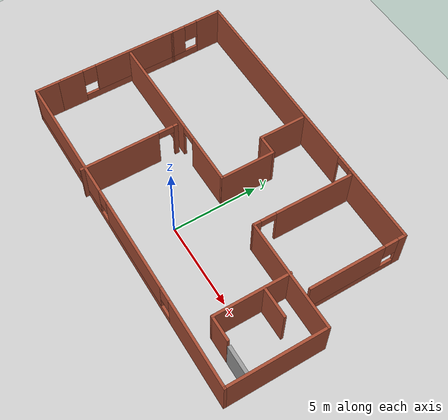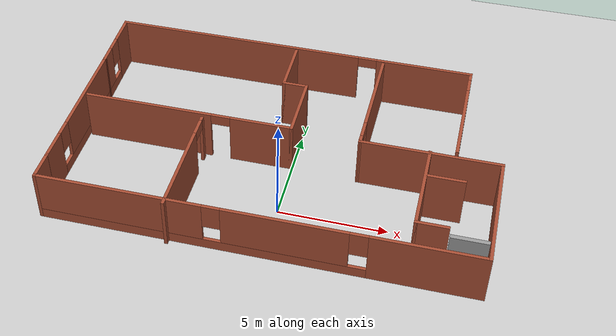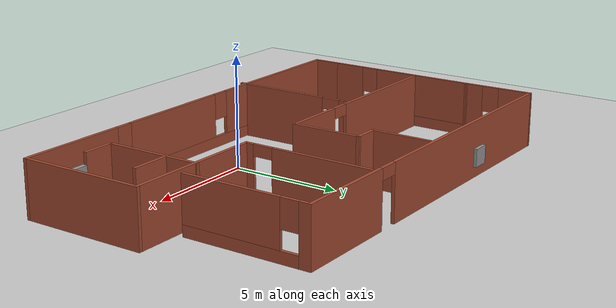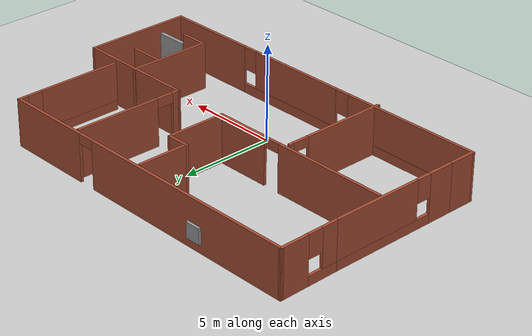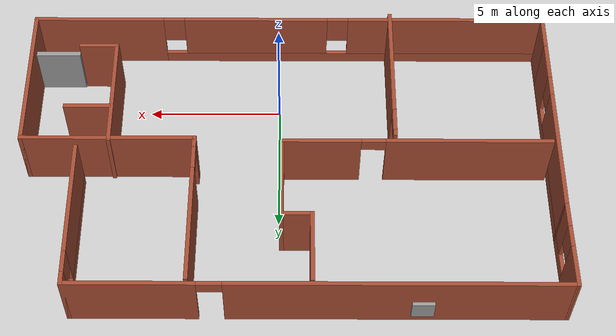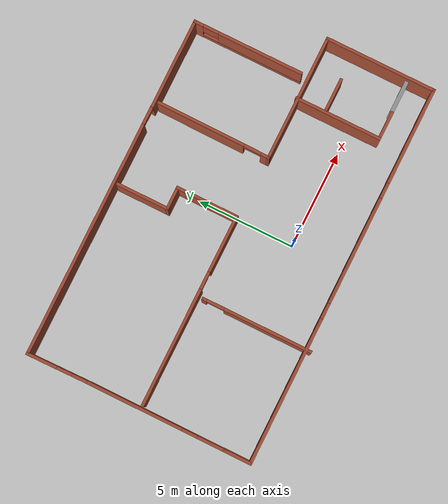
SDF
<sdf version="1.6">
 <world name="default">
  <light name="sun" type="directional">
   <pose>0 0 10 0 -0 0</pose>
   <diffuse>0.8 0.8 0.8 1</diffuse>
   <specular>0.2 0.2 0.2 1</specular>
   <attenuation>
    <range>1000</range>
    <constant>0.9</constant>
    <linear>0.01</linear>
    <quadratic>0.001</quadratic>
   </attenuation>
   <direction>-0.5 0.1 -0.9</direction>
  </light>
  <model name="ground_plane">
   <static>1</static>
   <link name="link">
    <collision name="collision">
     <geometry><plane><normal>0 0 1</normal><size>100 100</size></plane></geometry>
     <surface><friction><ode><mu>100</mu><mu2>50</mu2></ode></friction></surface>
    </collision>
    <visual name="visual">
     <cast_shadows>0</cast_shadows>
     <geometry><plane><normal>0 0 1</normal><size>100 100</size></plane></geometry>
     <material>
      <script><uri>file://media/materials/scripts/gazebo.material</uri><name>Gazebo/Grey</name></script>
     </material>
    </visual>
   </link>
  </model>
  <gravity>0 0 -9.8</gravity>
  <magnetic_field>6e-06 2.3e-05 -4.2e-05</magnetic_field>
  <atmosphere type="adiabatic"/>
  <physics name="default_physics" default="0" type="ode">
   <max_step_size>0.001</max_step_size>
   <real_time_factor>1</real_time_factor>
   <real_time_update_rate>1000</real_time_update_rate>
  </physics>
  <scene><ambient>0.4 0.4 0.4 1</ambient><background>0.7 0.7 0.7 1</background><shadows>1</shadows></scene>
  <spherical_coordinates>
   <surface_model>EARTH_WGS84</surface_model>
   <latitude_deg>0</latitude_deg>
   <longitude_deg>0</longitude_deg>
   <elevation>0</elevation>
   <heading_deg>0</heading_deg>
  </spherical_coordinates>
  <model name="MY_HOUSE">
   <pose>-0.392203 2.94254 0 0 -0 0</pose>
   <link name="Door_5">
    <collision name="Door_5_Collision">
     <geometry><box><size>1.82522 0.2 2</size></box></geometry>
     <pose>0 0 1 0 -0 0</pose>
    </collision>
    <visual name="Door_5_Visual">
     <pose>0 0 1 0 -0 0</pose>
     <geometry><box><size>1.82522 0.2 2</size></box></geometry>
     <material>
      <script><uri>file://media/materials/scripts/gazebo.material</uri><name>Gazebo/Grey</name></script>
     </material>
    </visual>
    <pose>8.98514 -4.37341 0 0 -0 0</pose>
   </link>
   <link name="Wall_0">
    <pose>-1.02446 5.91163 0 0 -0 0</pose>
    <visual name="Wall_0_Visual_0">
     <pose>-2.78462 0 1.25 0 -0 0</pose>
     <geometry><box><size>12.1808 0.15 2.5</size></box></geometry>
     <material>
      <script><uri>file://media/materials/scripts/gazebo.material</uri><name>Gazebo/Bricks</name></script>
      <ambient>1 1 1 1</ambient>
     </material>
     <meta><layer>0</layer></meta>
    </visual>
    <collision name="Wall_0_Collision_0">
     <geometry><box><size>12.1808 0.15 2.5</size></box></geometry>
     <pose>-2.78462 0 1.25 0 -0 0</pose>
    </collision>
    <visual name="Wall_0_Visual_1">
     <pose>6.54038 0 1.25 0 -0 0</pose>
     <geometry><box><size>4.66923 0.15 2.5</size></box></geometry>
     <material>
      <script><uri>file://media/materials/scripts/gazebo.material</uri><name>Gazebo/Bricks</name></script>
      <ambient>1 1 1 1</ambient>
     </material>
     <meta><layer>0</layer></meta>
    </visual>
    <collision name="Wall_0_Collision_1">
     <geometry><box><size>4.66923 0.15 2.5</size></box></geometry>
     <pose>6.54038 0 1.25 0 -0 0</pose>
    </collision>
    <visual name="Wall_0_Visual_2">
     <pose>3.75577 0 2.25 0 -0 0</pose>
     <geometry><box><size>0.9 0.15 0.5</size></box></geometry>
     <material>
      <script><uri>file://media/materials/scripts/gazebo.material</uri><name>Gazebo/Bricks</name></script>
      <ambient>1 1 1 1</ambient>
     </material>
     <meta><layer>0</layer></meta>
    </visual>
    <collision name="Wall_0_Collision_2">
     <geometry><box><size>0.9 0.15 0.5</size></box></geometry>
     <pose>3.75577 0 2.25 0 -0 0</pose>
    </collision>
   </link>
   <link name="Wall_1">
    <pose>7.77554 3.11163 0 0 0 -1.5708</pose>
    <visual name="Wall_1_Visual_0">
     <pose>-2.61362 0 1.25 0 -0 0</pose>
     <geometry><box><size>0.522757 0.15 2.5</size></box></geometry>
     <material>
      <script><uri>file://media/materials/scripts/gazebo.material</uri><name>Gazebo/Bricks</name></script>
      <ambient>1 1 1 1</ambient>
     </material>
     <meta><layer>0</layer></meta>
    </visual>
    <collision name="Wall_1_Collision_0">
     <geometry><box><size>0.522757 0.15 2.5</size></box></geometry>
     <pose>-2.61362 0 1.25 0 -0 0</pose>
    </collision>
    <visual name="Wall_1_Visual_1">
     <pose>0.261379 0 0.25 0 -0 0</pose>
     <geometry><box><size>5.22724 0.15 0.5</size></box></geometry>
     <material>
      <script><uri>file://media/materials/scripts/gazebo.material</uri><name>Gazebo/Bricks</name></script>
      <ambient>1 1 1 1</ambient>
     </material>
     <meta><layer>0</layer></meta>
    </visual>
    <collision name="Wall_1_Collision_1">
     <geometry><box><size>5.22724 0.15 0.5</size></box></geometry>
     <pose>0.261379 0 0.25 0 -0 0</pose>
    </collision>
    <visual name="Wall_1_Visual_2">
     <pose>0.661379 0 1.5 0 -0 0</pose>
     <geometry><box><size>4.42724 0.15 2</size></box></geometry>
     <material>
      <script><uri>file://media/materials/scripts/gazebo.material</uri><name>Gazebo/Bricks</name></script>
      <ambient>1 1 1 1</ambient>
     </material>
     <meta><layer>0</layer></meta>
    </visual>
    <collision name="Wall_1_Collision_2">
     <geometry><box><size>4.42724 0.15 2</size></box></geometry>
     <pose>0.661379 0 1.5 0 -0 0</pose>
    </collision>
    <visual name="Wall_1_Visual_3">
     <pose>-1.95224 0 1.9 0 -0 0</pose>
     <geometry><box><size>0.8 0.15 1.2</size></box></geometry>
     <material>
      <script><uri>file://media/materials/scripts/gazebo.material</uri><name>Gazebo/Bricks</name></script>
      <ambient>1 1 1 1</ambient>
     </material>
     <meta><layer>0</layer></meta>
    </visual>
    <collision name="Wall_1_Collision_3">
     <geometry><box><size>0.8 0.15 1.2</size></box></geometry>
     <pose>-1.95224 0 1.9 0 -0 0</pose>
    </collision>
   </link>
   <link name="Wall_10">
    <collision name="Wall_10_Collision">
     <geometry><box><size>3.25 0.15 2.5</size></box></geometry>
     <pose>0 0 1.25 0 -0 0</pose>
    </collision>
    <visual name="Wall_10_Visual">
     <pose>0 0 1.25 0 -0 0</pose>
     <geometry><box><size>3.25 0.15 2.5</size></box></geometry>
     <material>
      <script><uri>file://media/materials/scripts/gazebo.material</uri><name>Gazebo/Bricks</name></script>
      <ambient>1 1 1 1</ambient>
     </material>
     <meta><layer>0</layer></meta>
    </visual>
    <pose>0.291541 1.55639 0 0 -0 1.5708</pose>
   </link>
   <link name="Wall_11">
    <collision name="Wall_11_Collision">
     <geometry><box><size>1.25 0.15 2.5</size></box></geometry>
     <pose>0 0 1.25 0 -0 0</pose>
    </collision>
    <visual name="Wall_11_Visual">
     <pose>0 0 1.25 0 -0 0</pose>
     <geometry><box><size>1.25 0.15 2.5</size></box></geometry>
     <material>
      <script><uri>file://media/materials/scripts/gazebo.material</uri><name>Gazebo/Bricks</name></script>
      <ambient>1 1 1 1</ambient>
     </material>
     <meta><layer>0</layer></meta>
    </visual>
    <pose>-0.258459 3.10639 0 0 -0 3.14159</pose>
   </link>
   <link name="Wall_12">
    <collision name="Wall_12_Collision">
     <geometry><box><size>2.75 0.15 2.5</size></box></geometry>
     <pose>0 0 1.25 0 -0 0</pose>
    </collision>
    <visual name="Wall_12_Visual">
     <pose>0 0 1.25 0 -0 0</pose>
     <geometry><box><size>2.75 0.15 2.5</size></box></geometry>
     <material>
      <script><uri>file://media/materials/scripts/gazebo.material</uri><name>Gazebo/Bricks</name></script>
      <ambient>1 1 1 1</ambient>
     </material>
     <meta><layer>0</layer></meta>
    </visual>
    <pose>-0.808459 4.40639 0 0 -0 1.5708</pose>
   </link>
   <link name="Wall_14">
    <pose>3.50224 2.79941 0 0 0 -1.57997</pose>
    <visual name="Wall_14_Visual_0">
     <pose>-0.683638 0 1.25 0 -0 0</pose>
     <geometry><box><size>4.58181 0.15 2.5</size></box></geometry>
     <material>
      <script><uri>file://media/materials/scripts/gazebo.material</uri><name>Gazebo/Bricks</name></script>
      <ambient>1 1 1 1</ambient>
     </material>
     <meta><layer>0</layer></meta>
    </visual>
    <collision name="Wall_14_Collision_0">
     <geometry><box><size>4.58181 0.15 2.5</size></box></geometry>
     <pose>-0.683638 0 1.25 0 -0 0</pose>
    </collision>
    <visual name="Wall_14_Visual_1">
     <pose>2.74091 0 1.25 0 -0 0</pose>
     <geometry><box><size>0.467275 0.15 2.5</size></box></geometry>
     <material>
      <script><uri>file://media/materials/scripts/gazebo.material</uri><name>Gazebo/Bricks</name></script>
      <ambient>1 1 1 1</ambient>
     </material>
     <meta><layer>0</layer></meta>
    </visual>
    <collision name="Wall_14_Collision_1">
     <geometry><box><size>0.467275 0.15 2.5</size></box></geometry>
     <pose>2.74091 0 1.25 0 -0 0</pose>
    </collision>
    <visual name="Wall_14_Visual_2">
     <pose>2.05727 0 2.25 0 -0 0</pose>
     <geometry><box><size>0.9 0.15 0.5</size></box></geometry>
     <material>
      <script><uri>file://media/materials/scripts/gazebo.material</uri><name>Gazebo/Bricks</name></script>
      <ambient>1 1 1 1</ambient>
     </material>
     <meta><layer>0</layer></meta>
    </visual>
    <collision name="Wall_14_Collision_2">
     <geometry><box><size>0.9 0.15 0.5</size></box></geometry>
     <pose>2.05727 0 2.25 0 -0 0</pose>
    </collision>
   </link>
   <link name="Wall_16">
    <collision name="Wall_16_Collision">
     <geometry><box><size>4.5 0.15 2.5</size></box></geometry>
     <pose>0 0 1.25 0 -0 0</pose>
    </collision>
    <visual name="Wall_16_Visual">
     <pose>0 0 1.25 0 -0 0</pose>
     <geometry><box><size>4.5 0.15 2.5</size></box></geometry>
     <material>
      <script><uri>file://media/materials/scripts/gazebo.material</uri><name>Gazebo/Bricks</name></script>
      <ambient>1 1 1 1</ambient>
     </material>
     <meta><layer>0</layer></meta>
    </visual>
    <pose>6.61446 -2.22181 0 0 0 -1.5708</pose>
   </link>
   <link name="Wall_17">
    <collision name="Wall_17_Collision">
     <geometry><box><size>1.5 0.15 2.5</size></box></geometry>
     <pose>0 0 1.25 0 -0 0</pose>
    </collision>
    <visual name="Wall_17_Visual">
     <pose>0 0 1.25 0 -0 0</pose>
     <geometry><box><size>1.5 0.15 2.5</size></box></geometry>
     <material>
      <script><uri>file://media/materials/scripts/gazebo.material</uri><name>Gazebo/Bricks</name></script>
      <ambient>1 1 1 1</ambient>
     </material>
     <meta><layer>0</layer></meta>
    </visual>
    <pose>7.28946 -4.39681 0 0 -0 0</pose>
   </link>
   <link name="Wall_19">
    <collision name="Wall_19_Collision">
     <geometry><box><size>1.75 0.15 2.5</size></box></geometry>
     <pose>0 0 1.25 0 -0 0</pose>
    </collision>
    <visual name="Wall_19_Visual">
     <pose>0 0 1.25 0 -0 0</pose>
     <geometry><box><size>1.75 0.15 2.5</size></box></geometry>
     <material>
      <script><uri>file://media/materials/scripts/gazebo.material</uri><name>Gazebo/Bricks</name></script>
      <ambient>1 1 1 1</ambient>
     </material>
     <meta><layer>0</layer></meta>
    </visual>
    <pose>7.52086 -1.53642 0 0 -0 0</pose>
   </link>
   <link name="Wall_21">
    <pose>-3.86602 -3.11281 0 0 0 -1.5708</pose>
    <visual name="Wall_21_Visual_0">
     <pose>-2.74556 0 1.25 0 -0 0</pose>
     <geometry><box><size>0.258873 0.15 2.5</size></box></geometry>
     <material>
      <script><uri>file://media/materials/scripts/gazebo.material</uri><name>Gazebo/Bricks</name></script>
      <ambient>1 1 1 1</ambient>
     </material>
     <meta><layer>0</layer></meta>
    </visual>
    <collision name="Wall_21_Collision_0">
     <geometry><box><size>0.258873 0.15 2.5</size></box></geometry>
     <pose>-2.74556 0 1.25 0 -0 0</pose>
    </collision>
    <visual name="Wall_21_Visual_1">
     <pose>0.579437 0 1.25 0 -0 0</pose>
     <geometry><box><size>4.59113 0.15 2.5</size></box></geometry>
     <material>
      <script><uri>file://media/materials/scripts/gazebo.material</uri><name>Gazebo/Bricks</name></script>
      <ambient>1 1 1 1</ambient>
     </material>
     <meta><layer>0</layer></meta>
    </visual>
    <collision name="Wall_21_Collision_1">
     <geometry><box><size>4.59113 0.15 2.5</size></box></geometry>
     <pose>0.579437 0 1.25 0 -0 0</pose>
    </collision>
    <visual name="Wall_21_Visual_2">
     <pose>-2.16613 0 2.25 0 -0 0</pose>
     <geometry><box><size>0.9 0.15 0.5</size></box></geometry>
     <material>
      <script><uri>file://media/materials/scripts/gazebo.material</uri><name>Gazebo/Bricks</name></script>
      <ambient>1 1 1 1</ambient>
     </material>
     <meta><layer>0</layer></meta>
    </visual>
    <collision name="Wall_21_Collision_2">
     <geometry><box><size>0.9 0.15 0.5</size></box></geometry>
     <pose>-2.16613 0 2.25 0 -0 0</pose>
    </collision>
   </link>
   <link name="Wall_25">
    <pose>-9.79941 4.33081 0 0 0 -1.55495</pose>
    <visual name="Wall_25_Visual_0">
     <pose>-0.864495 0 1.25 0 -0 0</pose>
     <geometry><box><size>1.58305 0.15 2.5</size></box></geometry>
     <material>
      <script><uri>file://media/materials/scripts/gazebo.material</uri><name>Gazebo/Bricks</name></script>
      <ambient>1 1 1 1</ambient>
     </material>
     <meta><layer>0</layer></meta>
    </visual>
    <collision name="Wall_25_Collision_0">
     <geometry><box><size>1.58305 0.15 2.5</size></box></geometry>
     <pose>-0.864495 0 1.25 0 -0 0</pose>
    </collision>
    <visual name="Wall_25_Visual_1">
     <pose>0.791526 0 0.25 0 -0 0</pose>
     <geometry><box><size>1.72899 0.15 0.5</size></box></geometry>
     <material>
      <script><uri>file://media/materials/scripts/gazebo.material</uri><name>Gazebo/Bricks</name></script>
      <ambient>1 1 1 1</ambient>
     </material>
     <meta><layer>0</layer></meta>
    </visual>
    <collision name="Wall_25_Collision_1">
     <geometry><box><size>1.72899 0.15 0.5</size></box></geometry>
     <pose>0.791526 0 0.25 0 -0 0</pose>
    </collision>
    <visual name="Wall_25_Visual_2">
     <pose>1.19153 0 1.5 0 -0 0</pose>
     <geometry><box><size>0.92899 0.15 2</size></box></geometry>
     <material>
      <script><uri>file://media/materials/scripts/gazebo.material</uri><name>Gazebo/Bricks</name></script>
      <ambient>1 1 1 1</ambient>
     </material>
     <meta><layer>0</layer></meta>
    </visual>
    <collision name="Wall_25_Collision_2">
     <geometry><box><size>0.92899 0.15 2</size></box></geometry>
     <pose>1.19153 0 1.5 0 -0 0</pose>
    </collision>
    <visual name="Wall_25_Visual_3">
     <pose>0.327031 0 1.9 0 -0 0</pose>
     <geometry><box><size>0.8 0.15 1.2</size></box></geometry>
     <material>
      <script><uri>file://media/materials/scripts/gazebo.material</uri><name>Gazebo/Bricks</name></script>
      <ambient>1 1 1 1</ambient>
     </material>
     <meta><layer>0</layer></meta>
    </visual>
    <collision name="Wall_25_Collision_3">
     <geometry><box><size>0.8 0.15 1.2</size></box></geometry>
     <pose>0.327031 0 1.9 0 -0 0</pose>
    </collision>
   </link>
   <link name="Wall_3">
    <collision name="Wall_3_Collision">
     <geometry><box><size>6.5 0.15 2.5</size></box></geometry>
     <pose>0 0 1.25 0 -0 0</pose>
    </collision>
    <visual name="Wall_3_Visual">
     <pose>0 0 1.25 0 -0 0</pose>
     <geometry><box><size>6.5 0.15 2.5</size></box></geometry>
     <material>
      <script><uri>file://media/materials/scripts/gazebo.material</uri><name>Gazebo/Bricks</name></script>
      <ambient>1 1 1 1</ambient>
     </material>
     <meta><layer>0</layer></meta>
    </visual>
    <pose>6.65064 -0.100011 0 0 -0 0</pose>
   </link>
   <link name="Wall_4">
    <collision name="Wall_4_Collision">
     <geometry><box><size>5.75 0.15 2.5</size></box></geometry>
     <pose>0 0 1.25 0 -0 0</pose>
    </collision>
    <visual name="Wall_4_Visual">
     <pose>0 0 1.25 0 -0 0</pose>
     <geometry><box><size>5.75 0.15 2.5</size></box></geometry>
     <material>
      <script><uri>file://media/materials/scripts/gazebo.material</uri><name>Gazebo/Bricks</name></script>
      <ambient>1 1 1 1</ambient>
     </material>
     <meta><layer>0</layer></meta>
    </visual>
    <pose>9.82564 -2.90001 0 0 0 -1.5708</pose>
   </link>
   <link name="Wall_5">
    <pose>0.025638 -5.70001 0 0 -0 3.14159</pose>
    <visual name="Wall_5_Visual_0">
     <pose>-7.37358 0 1.25 0 -0 0</pose>
     <geometry><box><size>5.00284 0.15 2.5</size></box></geometry>
     <material>
      <script><uri>file://media/materials/scripts/gazebo.material</uri><name>Gazebo/Bricks</name></script>
      <ambient>1 1 1 1</ambient>
     </material>
     <meta><layer>0</layer></meta>
    </visual>
    <collision name="Wall_5_Collision_0">
     <geometry><box><size>5.00284 0.15 2.5</size></box></geometry>
     <pose>-7.37358 0 1.25 0 -0 0</pose>
    </collision>
    <visual name="Wall_5_Visual_1">
     <pose>2.50142 0 0.25 0 -0 0</pose>
     <geometry><box><size>14.7472 0.15 0.5</size></box></geometry>
     <material>
      <script><uri>file://media/materials/scripts/gazebo.material</uri><name>Gazebo/Bricks</name></script>
      <ambient>1 1 1 1</ambient>
     </material>
     <meta><layer>0</layer></meta>
    </visual>
    <collision name="Wall_5_Collision_1">
     <geometry><box><size>14.7472 0.15 0.5</size></box></geometry>
     <pose>2.50142 0 0.25 0 -0 0</pose>
    </collision>
    <visual name="Wall_5_Visual_2">
     <pose>-1.30327 0 1.5 0 -0 0</pose>
     <geometry><box><size>5.53779 0.15 2</size></box></geometry>
     <material>
      <script><uri>file://media/materials/scripts/gazebo.material</uri><name>Gazebo/Bricks</name></script>
      <ambient>1 1 1 1</ambient>
     </material>
     <meta><layer>0</layer></meta>
    </visual>
    <collision name="Wall_5_Collision_2">
     <geometry><box><size>5.53779 0.15 2</size></box></geometry>
     <pose>-1.30327 0 1.5 0 -0 0</pose>
    </collision>
    <visual name="Wall_5_Visual_3">
     <pose>6.07031 0 1.5 0 -0 0</pose>
     <geometry><box><size>7.60938 0.15 2</size></box></geometry>
     <material>
      <script><uri>file://media/materials/scripts/gazebo.material</uri><name>Gazebo/Bricks</name></script>
      <ambient>1 1 1 1</ambient>
     </material>
     <meta><layer>0</layer></meta>
    </visual>
    <collision name="Wall_5_Collision_3">
     <geometry><box><size>7.60938 0.15 2</size></box></geometry>
     <pose>6.07031 0 1.5 0 -0 0</pose>
    </collision>
    <visual name="Wall_5_Visual_4">
     <pose>-4.47216 0 1.9 0 -0 0</pose>
     <geometry><box><size>0.8 0.15 1.2</size></box></geometry>
     <material>
      <script><uri>file://media/materials/scripts/gazebo.material</uri><name>Gazebo/Bricks</name></script>
      <ambient>1 1 1 1</ambient>
     </material>
     <meta><layer>0</layer></meta>
    </visual>
    <collision name="Wall_5_Collision_4">
     <geometry><box><size>0.8 0.15 1.2</size></box></geometry>
     <pose>-4.47216 0 1.9 0 -0 0</pose>
    </collision>
    <visual name="Wall_5_Visual_5">
     <pose>1.86562 0 1.9 0 -0 0</pose>
     <geometry><box><size>0.8 0.15 1.2</size></box></geometry>
     <material>
      <script><uri>file://media/materials/scripts/gazebo.material</uri><name>Gazebo/Bricks</name></script>
      <ambient>1 1 1 1</ambient>
     </material>
     <meta><layer>0</layer></meta>
    </visual>
    <collision name="Wall_5_Collision_5">
     <geometry><box><size>0.8 0.15 1.2</size></box></geometry>
     <pose>1.86562 0 1.9 0 -0 0</pose>
    </collision>
   </link>
   <link name="Wall_6">
    <collision name="Wall_6_Collision">
     <geometry><box><size>1.5 0.15 2.5</size></box></geometry>
     <pose>0 0 1.25 0 -0 0</pose>
    </collision>
    <visual name="Wall_6_Visual">
     <pose>0 0 1.25 0 -0 0</pose>
     <geometry><box><size>1.5 0.15 2.5</size></box></geometry>
     <material>
      <script><uri>file://media/materials/scripts/gazebo.material</uri><name>Gazebo/Bricks</name></script>
      <ambient>1 1 1 1</ambient>
     </material>
     <meta><layer>0</layer></meta>
    </visual>
    <pose>-9.77436 -5.02501 0 0 -0 1.5708</pose>
   </link>
   <link name="Wall_7">
    <pose>-9.77436 -0.800011 0 0 -0 1.5708</pose>
    <visual name="Wall_7_Visual_0">
     <pose>-2.87398 0 1.25 0 -0 0</pose>
     <geometry><box><size>1.50205 0.15 2.5</size></box></geometry>
     <material>
      <script><uri>file://media/materials/scripts/gazebo.material</uri><name>Gazebo/Bricks</name></script>
      <ambient>1 1 1 1</ambient>
     </material>
     <meta><layer>0</layer></meta>
    </visual>
    <collision name="Wall_7_Collision_0">
     <geometry><box><size>1.50205 0.15 2.5</size></box></geometry>
     <pose>-2.87398 0 1.25 0 -0 0</pose>
    </collision>
    <visual name="Wall_7_Visual_1">
     <pose>0.751024 0 0.25 0 -0 0</pose>
     <geometry><box><size>5.74795 0.15 0.5</size></box></geometry>
     <material>
      <script><uri>file://media/materials/scripts/gazebo.material</uri><name>Gazebo/Bricks</name></script>
      <ambient>1 1 1 1</ambient>
     </material>
     <meta><layer>0</layer></meta>
    </visual>
    <collision name="Wall_7_Collision_1">
     <geometry><box><size>5.74795 0.15 0.5</size></box></geometry>
     <pose>0.751024 0 0.25 0 -0 0</pose>
    </collision>
    <visual name="Wall_7_Visual_2">
     <pose>1.15102 0 1.5 0 -0 0</pose>
     <geometry><box><size>4.94795 0.15 2</size></box></geometry>
     <material>
      <script><uri>file://media/materials/scripts/gazebo.material</uri><name>Gazebo/Bricks</name></script>
      <ambient>1 1 1 1</ambient>
     </material>
     <meta><layer>0</layer></meta>
    </visual>
    <collision name="Wall_7_Collision_2">
     <geometry><box><size>4.94795 0.15 2</size></box></geometry>
     <pose>1.15102 0 1.5 0 -0 0</pose>
    </collision>
    <visual name="Wall_7_Visual_3">
     <pose>-1.72295 0 1.9 0 -0 0</pose>
     <geometry><box><size>0.8 0.15 1.2</size></box></geometry>
     <material>
      <script><uri>file://media/materials/scripts/gazebo.material</uri><name>Gazebo/Bricks</name></script>
      <ambient>1 1 1 1</ambient>
     </material>
     <meta><layer>0</layer></meta>
    </visual>
    <collision name="Wall_7_Collision_3">
     <geometry><box><size>0.8 0.15 1.2</size></box></geometry>
     <pose>-1.72295 0 1.9 0 -0 0</pose>
    </collision>
   </link>
   <link name="Wall_9">
    <pose>-4.63346 0.00639 0 0 -0 0</pose>
    <visual name="Wall_9_Visual_0">
     <pose>-1.93897 0 1.25 0 -0 0</pose>
     <geometry><box><size>6.12206 0.15 2.5</size></box></geometry>
     <material>
      <script><uri>file://media/materials/scripts/gazebo.material</uri><name>Gazebo/Bricks</name></script>
      <ambient>1 1 1 1</ambient>
     </material>
     <meta><layer>0</layer></meta>
    </visual>
    <collision name="Wall_9_Collision_0">
     <geometry><box><size>6.12206 0.15 2.5</size></box></geometry>
     <pose>-1.93897 0 1.25 0 -0 0</pose>
    </collision>
    <visual name="Wall_9_Visual_1">
     <pose>3.51103 0 1.25 0 -0 0</pose>
     <geometry><box><size>2.97794 0.15 2.5</size></box></geometry>
     <material>
      <script><uri>file://media/materials/scripts/gazebo.material</uri><name>Gazebo/Bricks</name></script>
      <ambient>1 1 1 1</ambient>
     </material>
     <meta><layer>0</layer></meta>
    </visual>
    <collision name="Wall_9_Collision_1">
     <geometry><box><size>2.97794 0.15 2.5</size></box></geometry>
     <pose>3.51103 0 1.25 0 -0 0</pose>
    </collision>
    <visual name="Wall_9_Visual_2">
     <pose>1.57206 0 2.25 0 -0 0</pose>
     <geometry><box><size>0.9 0.15 0.5</size></box></geometry>
     <material>
      <script><uri>file://media/materials/scripts/gazebo.material</uri><name>Gazebo/Bricks</name></script>
      <ambient>1 1 1 1</ambient>
     </material>
     <meta><layer>0</layer></meta>
    </visual>
    <collision name="Wall_9_Collision_2">
     <geometry><box><size>0.9 0.15 0.5</size></box></geometry>
     <pose>1.57206 0 2.25 0 -0 0</pose>
    </collision>
   </link>
   <link name="Window_3">
    <collision name="Window_3_Collision">
     <geometry><box><size>0.8 0.17 0.8</size></box></geometry>
     <pose>0 0 0.4 0 -0 0</pose>
    </collision>
    <visual name="Window_3_Visual">
     <pose>0 0 0.4 0 -0 0</pose>
     <geometry><box><size>0.8 0.17 0.8</size></box></geometry>
     <material>
      <script><uri>file://media/materials/scripts/gazebo.material</uri><name>Gazebo/Grey</name></script>
     </material>
    </visual>
    <pose>-4.66192 6.03536 0.5 0 -0 0</pose>
   </link>
   <static>1</static>
  </model>
 </world>
</sdf>
